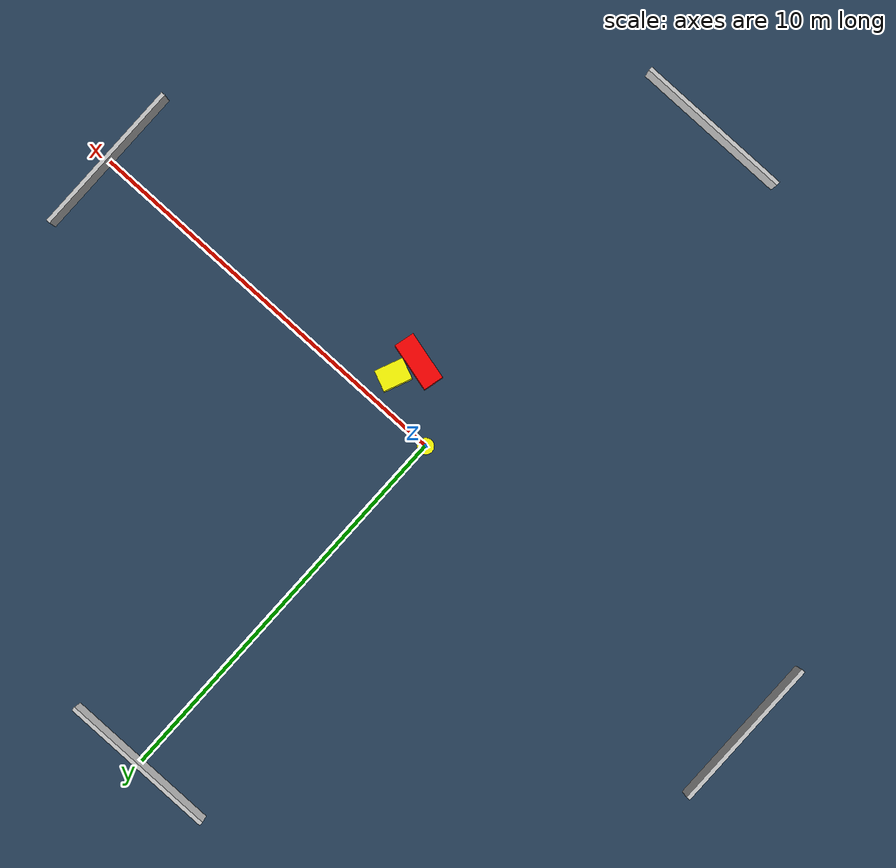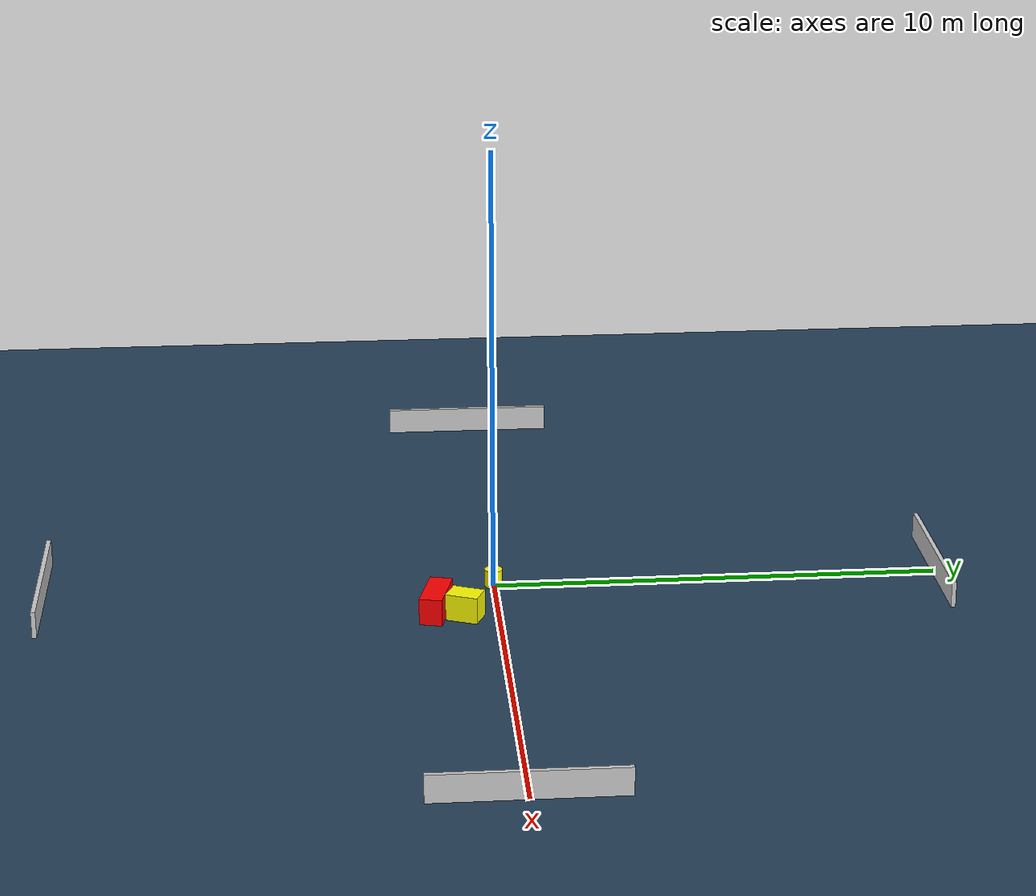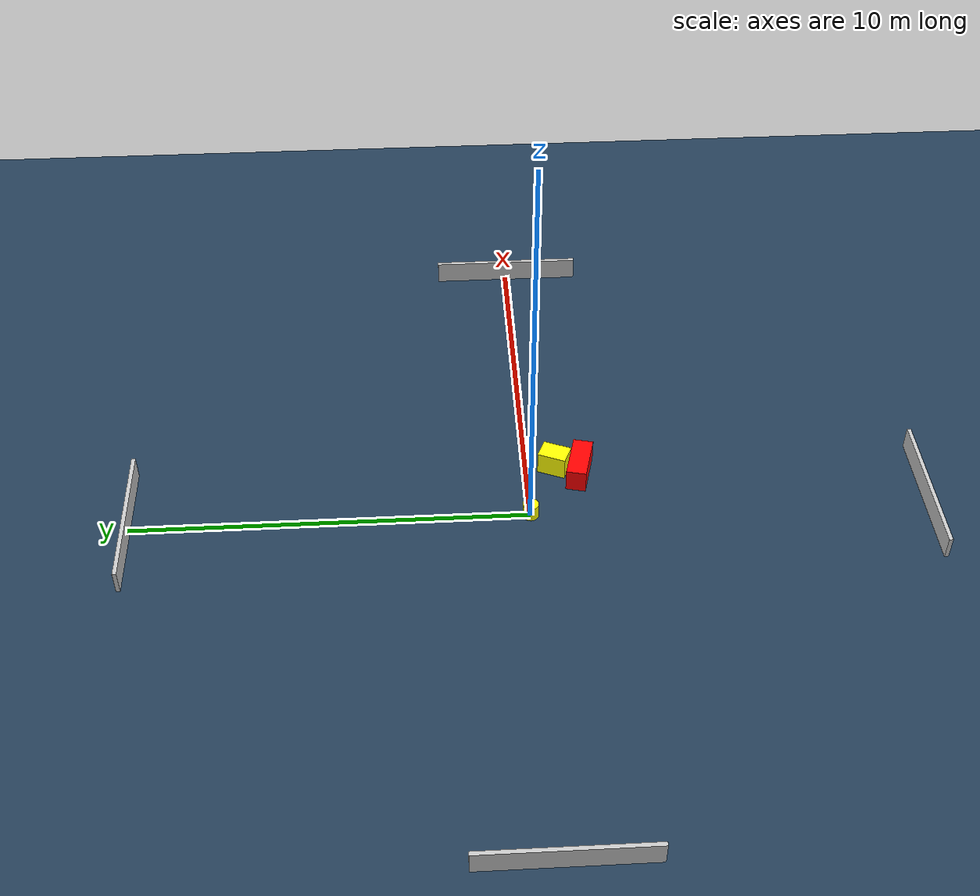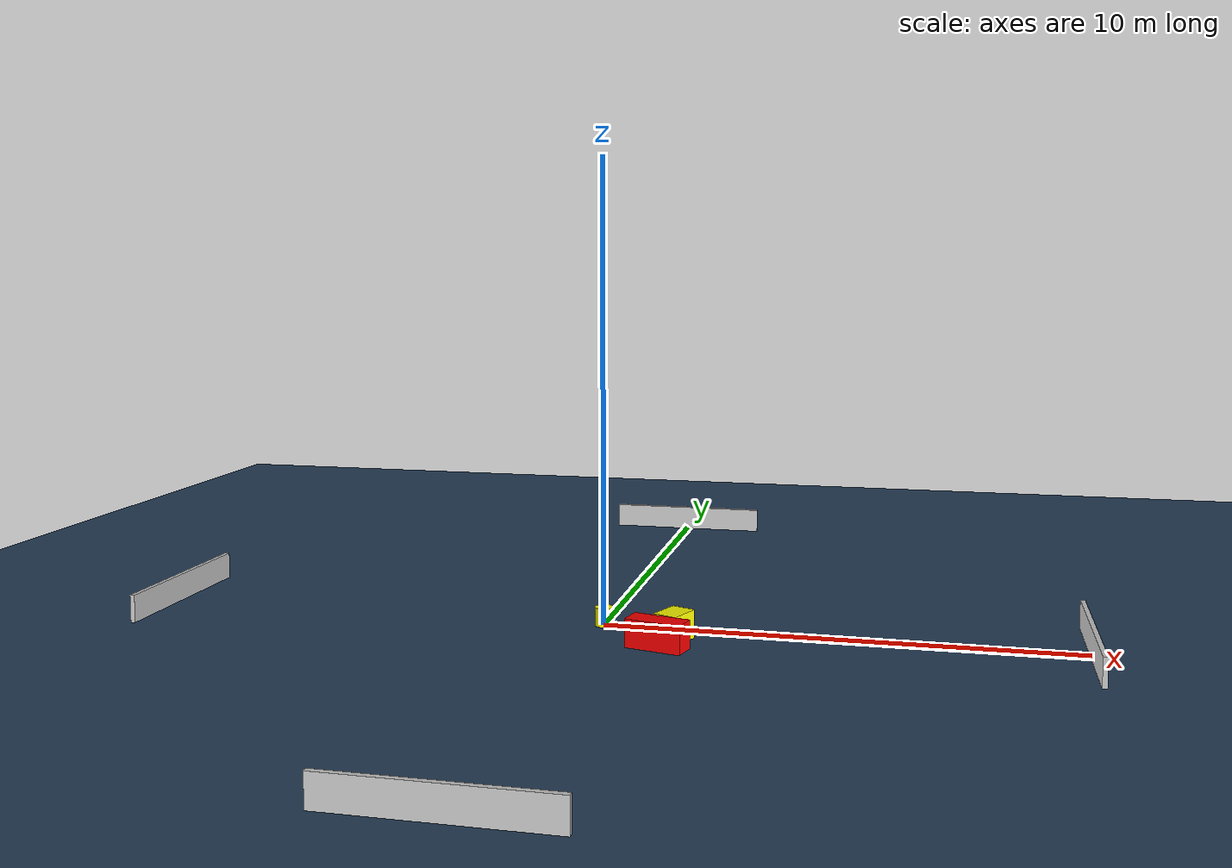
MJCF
<?xml version="1.0" ?>
<mujoco model="generated_environment">
  <option timestep="0.01" integrator="RK4" cone="elliptic"/>
  <default>
    <geom density="1"/>
  </default>
  <asset>
    <texture builtin="gradient" height="3072" name="skybox" rgb1="0.3 0.5 0.7" rgb2="0 0 0" type="skybox" width="512"/>
    <texture builtin="checker" height="300" name="groundplane" rgb1="0.2 0.3 0.4" rgb2="0.1 0.2 0.3" type="2d" width="300"/>
    <material name="groundplane" reflectance="0.2" texrepeat="5 5" texture="groundplane"/>
  </asset>
  <worldbody>
    <light dir="0 0 -1" directional="true" pos="0 0 1.5"/>
    <geom condim="3" friction="0.5 0.005 0.001" material="groundplane" name="floor" pos="0 0 0" size="0 0 0.05" type="plane"/>
    <body name="walls">
      <geom name="wall_1" condim="4" pos="-10.0 0.0 0.3" rgba="0.800000011920929 0.800000011920929 0.800000011920929 1.0" size="0.05 2.0 0.3" type="box"/>
      <geom name="wall_2" condim="4" pos="10.0 0.0 0.3" rgba="0.800000011920929 0.800000011920929 0.800000011920929 1.0" size="0.05 2.0 0.3" type="box"/>
      <geom name="wall_3" condim="4" pos="0.0 -10.0 0.3" rgba="0.800000011920929 0.800000011920929 0.800000011920929 1.0" size="2.0 0.05 0.3" type="box"/>
      <geom name="wall_4" condim="4" pos="0.0 10.0 0.3" rgba="0.800000011920929 0.800000011920929 0.800000011920929 1.0" size="2.0 0.05 0.3" type="box"/>
    </body>
    <body name="robot">
      <joint name="joint_x" type="slide" pos="0 0 0" axis="1 0 0"/>
      <joint name="joint_y" type="slide" pos="0 0 0" axis="0 1 0"/>
      <geom name="robot" type="cylinder" pos="0.0 0.0 0.2" size="0.2 0.2 0.0" mass="5.0" friction="1.0 0.005 0.0001" condim="4" rgba="1.0 1.0 0.0 1.0"/>
    </body>
    <body name="obstacle_1_movable">
      <geom name="obstacle_1_movable" condim="4" pos="1.6738710004619746 -0.726728437632513 0.3" euler="0 0 336.842641009935" friction="0.0 0.005 0.001" rgba="1.0 1.0 0.0 1.0" size="0.2637764234382485 0.3630583604958416 0.3" type="box" mass="0.1"/>
      <joint type="free"/>
    </body>
    <body name="obstacle_2_static">
      <geom name="obstacle_2_static" condim="4" pos="1.437589251905276 -1.353160799403548 0.3" euler="0 0 256.02948862164266" friction="0.0 0.005 0.001" rgba="1.0 0.0 0.0 1.0" size="0.2543978142286091 0.6157052455333969 0.3" type="box"/>
    </body>
  </worldbody>
  <actuator>
    <motor name="actuator_x" joint="joint_x" gear="1" ctrlrange="-1 1"/>
    <motor name="actuator_y" joint="joint_y" gear="1" ctrlrange="-1 1"/>
  </actuator>
</mujoco>
